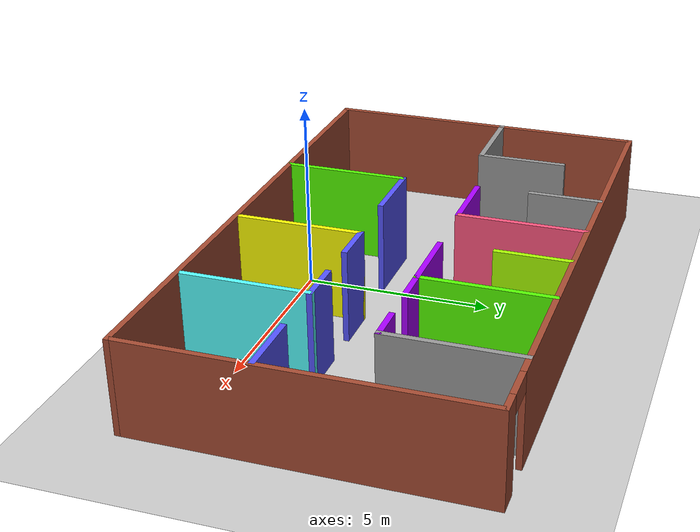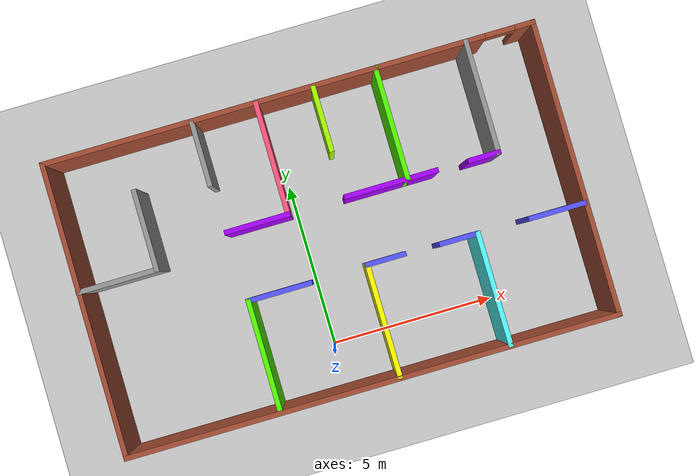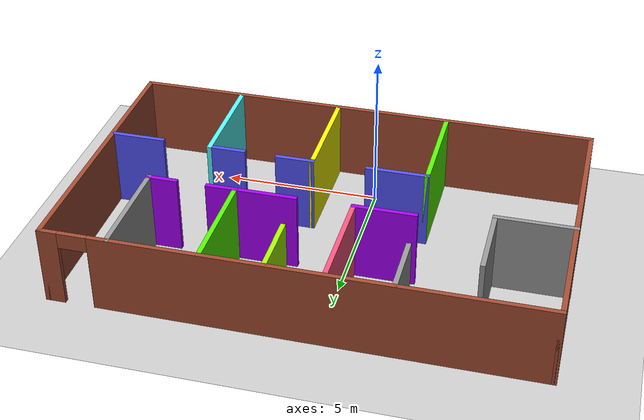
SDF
<sdf version="1.6">
 <world name="default">
  <light name="sun" type="directional">
   <pose>0 0 10 0 -0 0</pose>
   <diffuse>0.8 0.8 0.8 1</diffuse>
   <specular>0.2 0.2 0.2 1</specular>
   <attenuation>
    <range>1000</range>
    <constant>0.9</constant>
    <linear>0.01</linear>
    <quadratic>0.001</quadratic>
   </attenuation>
   <direction>-0.5 0.1 -0.9</direction>
  </light>
  <model name="ground_plane">
   <static>1</static>
   <link name="link">
    <collision name="collision">
     <geometry><plane><normal>0 0 1</normal><size>100 100</size></plane></geometry>
     <surface><friction><ode><mu>100</mu><mu2>50</mu2></ode></friction></surface>
    </collision>
    <visual name="visual">
     <cast_shadows>0</cast_shadows>
     <geometry><plane><normal>0 0 1</normal><size>100 100</size></plane></geometry>
     <material>
      <script><uri>file://media/materials/scripts/gazebo.material</uri><name>Gazebo/Grey</name></script>
     </material>
    </visual>
   </link>
  </model>
  <gravity>0 0 -9.8</gravity>
  <magnetic_field>6e-06 2.3e-05 -4.2e-05</magnetic_field>
  <atmosphere type="adiabatic"/>
  <physics name="default_physics" default="0" type="ode">
   <max_step_size>0.001</max_step_size>
   <real_time_factor>1</real_time_factor>
   <real_time_update_rate>1000</real_time_update_rate>
  </physics>
  <scene><ambient>0.4 0.4 0.4 1</ambient><background>0.7 0.7 0.7 1</background><shadows>1</shadows></scene>
  <spherical_coordinates>
   <surface_model>EARTH_WGS84</surface_model>
   <latitude_deg>0</latitude_deg>
   <longitude_deg>0</longitude_deg>
   <elevation>0</elevation>
   <heading_deg>0</heading_deg>
  </spherical_coordinates>
  <model name="building">
   <pose>0.750803 3.05721 0 0 -0 0</pose>
   <link name="Wall_1">
    <pose>0.00435 4.425 0 0 -0 0</pose>
    <visual name="Wall_1_Visual_0">
     <pose>-0.761793 0 1.25 0 -0 0</pose>
     <geometry><box><size>13.4764 0.15 2.5</size></box></geometry>
     <material>
      <script><uri>file://media/materials/scripts/gazebo.material</uri><name>Gazebo/Bricks</name></script>
      <ambient>1 1 1 1</ambient>
     </material>
     <meta><layer>0</layer></meta>
    </visual>
    <collision name="Wall_1_Collision_0">
     <geometry><box><size>13.4764 0.15 2.5</size></box></geometry>
     <pose>-0.761793 0 1.25 0 -0 0</pose>
    </collision>
    <visual name="Wall_1_Visual_1">
     <pose>7.18821 0 1.25 0 -0 0</pose>
     <geometry><box><size>0.623586 0.15 2.5</size></box></geometry>
     <material>
      <script><uri>file://media/materials/scripts/gazebo.material</uri><name>Gazebo/Bricks</name></script>
      <ambient>1 1 1 1</ambient>
     </material>
     <meta><layer>0</layer></meta>
    </visual>
    <collision name="Wall_1_Collision_1">
     <geometry><box><size>0.623586 0.15 2.5</size></box></geometry>
     <pose>7.18821 0 1.25 0 -0 0</pose>
    </collision>
    <visual name="Wall_1_Visual_2">
     <pose>6.42641 0 2.25 0 -0 0</pose>
     <geometry><box><size>0.9 0.15 0.5</size></box></geometry>
     <material>
      <script><uri>file://media/materials/scripts/gazebo.material</uri><name>Gazebo/Bricks</name></script>
      <ambient>1 1 1 1</ambient>
     </material>
     <meta><layer>0</layer></meta>
    </visual>
    <collision name="Wall_1_Collision_2">
     <geometry><box><size>0.9 0.15 0.5</size></box></geometry>
     <pose>6.42641 0 2.25 0 -0 0</pose>
    </collision>
   </link>
   <link name="Wall_11">
    <collision name="Wall_11_Collision">
     <geometry><box><size>3.5 0.15 2.5</size></box></geometry>
     <pose>0 0 1.25 0 -0 0</pose>
    </collision>
    <visual name="Wall_11_Visual">
     <pose>0 0 1.25 0 -0 0</pose>
     <geometry><box><size>3.5 0.15 2.5</size></box></geometry>
     <material>
      <script><uri>file://media/materials/scripts/gazebo.material</uri><name>Gazebo/Grey</name></script>
      <ambient>0.333333 1 1 1</ambient>
     </material>
     <meta><layer>0</layer></meta>
    </visual>
    <pose>4.16233 -2.70465 0 0 -0 1.5708</pose>
   </link>
   <link name="Wall_13">
    <collision name="Wall_13_Collision">
     <geometry><box><size>3.5 0.15 2.5</size></box></geometry>
     <pose>0 0 1.25 0 -0 0</pose>
    </collision>
    <visual name="Wall_13_Visual">
     <pose>0 0 1.25 0 -0 0</pose>
     <geometry><box><size>3.5 0.15 2.5</size></box></geometry>
     <material>
      <script><uri>file://media/materials/scripts/gazebo.material</uri><name>Gazebo/Grey</name></script>
      <ambient>1 1 0 1</ambient>
     </material>
     <meta><layer>0</layer></meta>
    </visual>
    <pose>0.827739 -2.68197 0 0 -0 1.5708</pose>
   </link>
   <link name="Wall_16">
    <collision name="Wall_16_Collision">
     <geometry><box><size>3.5 0.15 2.5</size></box></geometry>
     <pose>0 0 1.25 0 -0 0</pose>
    </collision>
    <visual name="Wall_16_Visual">
     <pose>0 0 1.25 0 -0 0</pose>
     <geometry><box><size>3.5 0.15 2.5</size></box></geometry>
     <material>
      <script><uri>file://media/materials/scripts/gazebo.material</uri><name>Gazebo/Grey</name></script>
      <ambient>0.333333 1 0 1</ambient>
     </material>
     <meta><layer>0</layer></meta>
    </visual>
    <pose>-2.77907 -2.72734 0 0 -0 1.5708</pose>
   </link>
   <link name="Wall_22">
    <collision name="Wall_22_Collision">
     <geometry><box><size>1.75 0.15 2.5</size></box></geometry>
     <pose>0 0 1.25 0 -0 0</pose>
    </collision>
    <visual name="Wall_22_Visual">
     <pose>0 0 1.25 0 -0 0</pose>
     <geometry><box><size>1.75 0.15 2.5</size></box></geometry>
     <material>
      <script><uri>file://media/materials/scripts/gazebo.material</uri><name>Gazebo/Grey</name></script>
      <ambient>0.333333 0.333333 1 1</ambient>
     </material>
     <meta><layer>0</layer></meta>
    </visual>
    <pose>6.56082 -1.04506 0 0 -0 3.14159</pose>
   </link>
   <link name="Wall_29">
    <collision name="Wall_29_Collision">
     <geometry><box><size>1.25 0.15 2.5</size></box></geometry>
     <pose>0 0 1.25 0 -0 0</pose>
    </collision>
    <visual name="Wall_29_Visual">
     <pose>0 0 1.25 0 -0 0</pose>
     <geometry><box><size>1.25 0.15 2.5</size></box></geometry>
     <material>
      <script><uri>file://media/materials/scripts/gazebo.material</uri><name>Gazebo/Grey</name></script>
      <ambient>0.333333 0.333333 1 1</ambient>
     </material>
     <meta><layer>0</layer></meta>
    </visual>
    <pose>3.61233 -1.02965 0 0 -0 3.14159</pose>
   </link>
   <link name="Wall_4">
    <collision name="Wall_4_Collision">
     <geometry><box><size>9 0.15 2.5</size></box></geometry>
     <pose>0 0 1.25 0 -0 0</pose>
    </collision>
    <visual name="Wall_4_Visual">
     <pose>0 0 1.25 0 -0 0</pose>
     <geometry><box><size>9 0.15 2.5</size></box></geometry>
     <material>
      <script><uri>file://media/materials/scripts/gazebo.material</uri><name>Gazebo/Bricks</name></script>
      <ambient>1 1 1 1</ambient>
     </material>
     <meta><layer>0</layer></meta>
    </visual>
    <pose>7.42935 0 0 0 0 -1.5708</pose>
   </link>
   <link name="Wall_40">
    <collision name="Wall_40_Collision">
     <geometry><box><size>1.25 0.15 2.5</size></box></geometry>
     <pose>0 0 1.25 0 -0 0</pose>
    </collision>
    <visual name="Wall_40_Visual">
     <pose>0 0 1.25 0 -0 0</pose>
     <geometry><box><size>1.25 0.15 2.5</size></box></geometry>
     <material>
      <script><uri>file://media/materials/scripts/gazebo.material</uri><name>Gazebo/Grey</name></script>
      <ambient>0.333333 0.333333 1 1</ambient>
     </material>
     <meta><layer>0</layer></meta>
    </visual>
    <pose>1.37774 -1.00697 0 0 -0 0</pose>
   </link>
   <link name="Wall_42">
    <collision name="Wall_42_Collision">
     <geometry><box><size>2 0.15 2.5</size></box></geometry>
     <pose>0 0 1.25 0 -0 0</pose>
    </collision>
    <visual name="Wall_42_Visual">
     <pose>0 0 1.25 0 -0 0</pose>
     <geometry><box><size>2 0.15 2.5</size></box></geometry>
     <material>
      <script><uri>file://media/materials/scripts/gazebo.material</uri><name>Gazebo/Grey</name></script>
      <ambient>0.333333 0.333333 1 1</ambient>
     </material>
     <meta><layer>0</layer></meta>
    </visual>
    <pose>-1.85407 -1.05234 0 0 -0 0</pose>
   </link>
   <link name="Wall_44">
    <collision name="Wall_44_Collision">
     <geometry><box><size>2 0.15 2.5</size></box></geometry>
     <pose>0 0 1.25 0 -0 0</pose>
    </collision>
    <visual name="Wall_44_Visual">
     <pose>0 0 1.25 0 -0 0</pose>
     <geometry><box><size>2 0.15 2.5</size></box></geometry>
     <material>
      <script><uri>file://media/materials/scripts/gazebo.material</uri><name>Gazebo/Grey</name></script>
      <ambient>0.666667 0 1 1</ambient>
     </material>
     <meta><layer>0</layer></meta>
    </visual>
    <pose>-1.89943 1.0419 0 0 -0 0</pose>
   </link>
   <link name="Wall_46">
    <collision name="Wall_46_Collision">
     <geometry><box><size>2 0.15 2.5</size></box></geometry>
     <pose>0 0 1.25 0 -0 0</pose>
    </collision>
    <visual name="Wall_46_Visual">
     <pose>0 0 1.25 0 -0 0</pose>
     <geometry><box><size>2 0.15 2.5</size></box></geometry>
     <material>
      <script><uri>file://media/materials/scripts/gazebo.material</uri><name>Gazebo/Grey</name></script>
      <ambient>0.666667 0 1 1</ambient>
     </material>
     <meta><layer>0</layer></meta>
    </visual>
    <pose>1.73005 1.06458 0 0 -0 0</pose>
   </link>
   <link name="Wall_47">
    <collision name="Wall_47_Collision">
     <geometry><box><size>3.5 0.15 2.5</size></box></geometry>
     <pose>0 0 1.25 0 -0 0</pose>
    </collision>
    <visual name="Wall_47_Visual">
     <pose>0 0 1.25 0 -0 0</pose>
     <geometry><box><size>3.5 0.15 2.5</size></box></geometry>
     <material>
      <script><uri>file://media/materials/scripts/gazebo.material</uri><name>Gazebo/Grey</name></script>
      <ambient>0.333333 1 0 1</ambient>
     </material>
     <meta><layer>0</layer></meta>
    </visual>
    <pose>2.65505 2.73958 0 0 -0 1.5708</pose>
   </link>
   <link name="Wall_49">
    <collision name="Wall_49_Collision">
     <geometry><box><size>1 0.15 2.5</size></box></geometry>
     <pose>0 0 1.25 0 -0 0</pose>
    </collision>
    <visual name="Wall_49_Visual">
     <pose>0 0 1.25 0 -0 0</pose>
     <geometry><box><size>1 0.15 2.5</size></box></geometry>
     <material>
      <script><uri>file://media/materials/scripts/gazebo.material</uri><name>Gazebo/Grey</name></script>
      <ambient>0.666667 0 1 1</ambient>
     </material>
     <meta><layer>0</layer></meta>
    </visual>
    <pose>3.08006 1.06458 0 0 -0 0</pose>
   </link>
   <link name="Wall_5">
    <collision name="Wall_5_Collision">
     <geometry><box><size>15 0.15 2.5</size></box></geometry>
     <pose>0 0 1.25 0 -0 0</pose>
    </collision>
    <visual name="Wall_5_Visual">
     <pose>0 0 1.25 0 -0 0</pose>
     <geometry><box><size>15 0.15 2.5</size></box></geometry>
     <material>
      <script><uri>file://media/materials/scripts/gazebo.material</uri><name>Gazebo/Bricks</name></script>
      <ambient>1 1 1 1</ambient>
     </material>
     <meta><layer>0</layer></meta>
    </visual>
    <pose>0.00435 -4.425 0 0 -0 3.14159</pose>
   </link>
   <link name="Wall_54">
    <collision name="Wall_54_Collision">
     <geometry><box><size>1 0.15 2.5</size></box></geometry>
     <pose>0 0 1.25 0 -0 0</pose>
    </collision>
    <visual name="Wall_54_Visual">
     <pose>0 0 1.25 0 -0 0</pose>
     <geometry><box><size>1 0.15 2.5</size></box></geometry>
     <material>
      <script><uri>file://media/materials/scripts/gazebo.material</uri><name>Gazebo/Grey</name></script>
      <ambient>0.666667 0 1 1</ambient>
     </material>
     <meta><layer>0</layer></meta>
    </visual>
    <pose>4.97297 1.06458 0 0 -0 0</pose>
   </link>
   <link name="Wall_56">
    <collision name="Wall_56_Collision">
     <geometry><box><size>3.5 0.15 2.5</size></box></geometry>
     <pose>0 0 1.25 0 -0 0</pose>
    </collision>
    <visual name="Wall_56_Visual">
     <pose>0 0 1.25 0 -0 0</pose>
     <geometry><box><size>3.5 0.15 2.5</size></box></geometry>
     <material>
      <script><uri>file://media/materials/scripts/gazebo.material</uri><name>Gazebo/Grey</name></script>
      <ambient>0 0 0 1</ambient>
     </material>
     <meta><layer>0</layer></meta>
    </visual>
    <pose>5.39797 2.73958 0 0 -0 1.5708</pose>
   </link>
   <link name="Wall_58">
    <collision name="Wall_58_Collision">
     <geometry><box><size>2 0.15 2.5</size></box></geometry>
     <pose>0 0 1.25 0 -0 0</pose>
    </collision>
    <visual name="Wall_58_Visual">
     <pose>0 0 1.25 0 -0 0</pose>
     <geometry><box><size>2 0.15 2.5</size></box></geometry>
     <material>
      <script><uri>file://media/materials/scripts/gazebo.material</uri><name>Gazebo/Grey</name></script>
      <ambient>0.666667 1 0 1</ambient>
     </material>
     <meta><layer>0</layer></meta>
    </visual>
    <pose>0.759686 3.42881 0 0 0 -1.5708</pose>
   </link>
   <link name="Wall_6">
    <collision name="Wall_6_Collision">
     <geometry><box><size>9 0.15 2.5</size></box></geometry>
     <pose>0 0 1.25 0 -0 0</pose>
    </collision>
    <visual name="Wall_6_Visual">
     <pose>0 0 1.25 0 -0 0</pose>
     <geometry><box><size>9 0.15 2.5</size></box></geometry>
     <material>
      <script><uri>file://media/materials/scripts/gazebo.material</uri><name>Gazebo/Bricks</name></script>
      <ambient>1 1 1 1</ambient>
     </material>
     <meta><layer>0</layer></meta>
    </visual>
    <pose>-7.42065 0 0 0 -0 1.5708</pose>
   </link>
   <link name="Wall_60">
    <collision name="Wall_60_Collision">
     <geometry><box><size>3.5 0.15 2.5</size></box></geometry>
     <pose>0 0 1.25 0 -0 0</pose>
    </collision>
    <visual name="Wall_60_Visual">
     <pose>0 0 1.25 0 -0 0</pose>
     <geometry><box><size>3.5 0.15 2.5</size></box></geometry>
     <material>
      <script><uri>file://media/materials/scripts/gazebo.material</uri><name>Gazebo/Grey</name></script>
      <ambient>1 0.333333 0.498039 1</ambient>
     </material>
     <meta><layer>0</layer></meta>
    </visual>
    <pose>-0.974435 2.7169 0 0 -0 1.5708</pose>
   </link>
   <link name="Wall_62">
    <collision name="Wall_62_Collision">
     <geometry><box><size>2 0.15 2.5</size></box></geometry>
     <pose>0 0 1.25 0 -0 0</pose>
    </collision>
    <visual name="Wall_62_Visual">
     <pose>0 0 1.25 0 -0 0</pose>
     <geometry><box><size>2 0.15 2.5</size></box></geometry>
     <material>
      <script><uri>file://media/materials/scripts/gazebo.material</uri><name>Gazebo/Grey</name></script>
      <ambient>1 1 1 1</ambient>
     </material>
     <meta><layer>0</layer></meta>
    </visual>
    <pose>-2.91517 3.45149 0 0 0 -1.5708</pose>
   </link>
   <link name="Wall_64">
    <collision name="Wall_64_Collision">
     <geometry><box><size>2.5 0.15 2.5</size></box></geometry>
     <pose>0 0 1.25 0 -0 0</pose>
    </collision>
    <visual name="Wall_64_Visual">
     <pose>0 0 1.25 0 -0 0</pose>
     <geometry><box><size>2.5 0.15 2.5</size></box></geometry>
     <material>
      <script><uri>file://media/materials/scripts/gazebo.material</uri><name>Gazebo/Grey</name></script>
      <ambient>1 1 1 1</ambient>
     </material>
     <meta><layer>0</layer></meta>
    </visual>
    <pose>-6.25435 0.565527 0 0 -0 0</pose>
   </link>
   <link name="Wall_65">
    <collision name="Wall_65_Collision">
     <geometry><box><size>2.5 0.15 2.5</size></box></geometry>
     <pose>0 0 1.25 0 -0 0</pose>
    </collision>
    <visual name="Wall_65_Visual">
     <pose>0 0 1.25 0 -0 0</pose>
     <geometry><box><size>2.5 0.15 2.5</size></box></geometry>
     <material>
      <script><uri>file://media/materials/scripts/gazebo.material</uri><name>Gazebo/Grey</name></script>
      <ambient>1 1 1 1</ambient>
     </material>
     <meta><layer>0</layer></meta>
    </visual>
    <pose>-5.07935 1.74053 0 0 -0 1.5708</pose>
   </link>
   <static>1</static>
  </model>
 </world>
</sdf>
